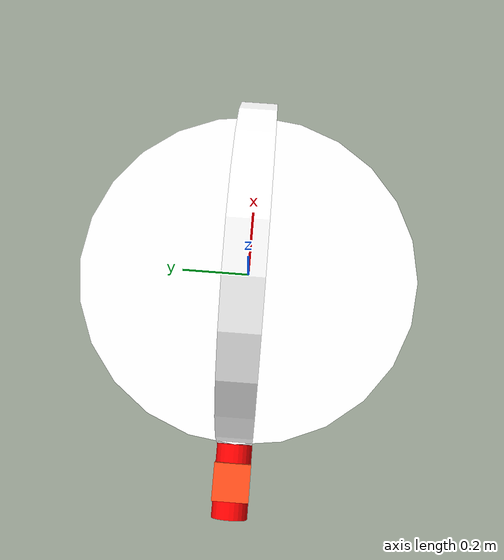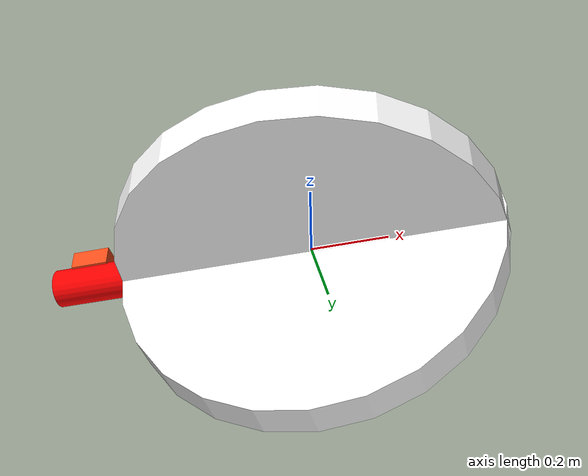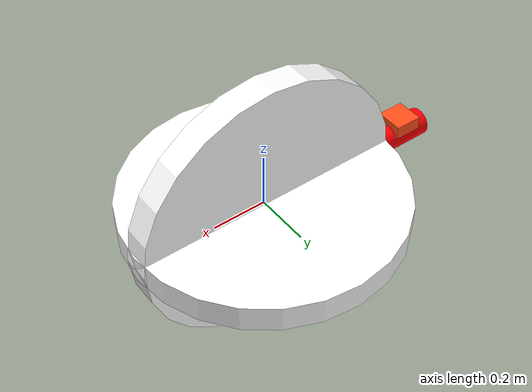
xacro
<?xml version='1.0'?>

<robot name="archerfish" xmlns:xacro="http://www.ros.org/wiki/xacro">

  <xacro:include filename="inertial_macros.xacro"/>
  <xacro:include filename="archerfish_robot.gazebo.xacro"/>

    <material name="white">
        <color rgba="1 1 1 1" />
    </material>

    <material name="orange">
        <color rgba="1 0.3 0.1 1"/>
    </material>

    <material name="blue">
        <color rgba="0.2 0.2 1 1"/>
    </material>

    <material name="black">
        <color rgba="0 0 0 1"/>
    </material>

    <material name="red">
        <color rgba="1 0 0 1"/>
    </material>

    <link name="base_footprint"/>

    <joint name="base_joint" type="fixed">
        <parent link="base_footprint"/>
        <child link="base_link"/>
        <origin xyz="0 0 0.001"/>
    </joint>

    <link name="base_link">
        <visual>
          <origin xyz="0 0 0.001"/>
          <geometry>
              <cylinder length="0.1" radius="0.5"/>
          </geometry>
          <material name="white"/>
        </visual>
        <collision>
          <origin xyz="0 0 0.001"/>
          <geometry>
              <cylinder length="0.1" radius="0.5"/>
          </geometry>
        </collision>
        <xacro:inertial_cylinder mass="10" length="0.1" radius="0.5">
            <origin xyz="0 0 0.001" rpy="0 0 0"/>
        </xacro:inertial_cylinder>
    </link>

    <gazebo reference="base_link">
        <material>Gazebo/Black</material>
    </gazebo>

    <joint name="revolutejoint" type="continuous">
        <parent link="base_link"/>
        <child link="main_body"/>
        <origin xyz="0 0 0.001" rpy="-${pi/2} 0 0" />
        <axis xyz="0 1 0"/>
    </joint>

    <link name="main_body">
        <visual>
          <origin xyz="0 0 0.001"/>
          <geometry>
              <cylinder length="0.1" radius="0.5"/>
          </geometry>
          <material name="white"/>
        </visual>
        <xacro:inertial_cylinder mass="10" length="0.1" radius="0.5">
            <origin xyz="0 0 0.001" rpy="-${pi/2} 0 0"/>
        </xacro:inertial_cylinder>
    </link>

    <gazebo reference="main_body">
        <material>Gazebo/White</material>
    </gazebo>

    <joint name="aimjoint" type="continuous">
        <parent link="main_body"/>
        <child link="barrel"/>
        <origin xyz="0 0 0" rpy="0 -${pi/2} 0" />
        <axis xyz="1 0 0"/>
    </joint>

    <link name="barrel">
        <visual>
          <origin xyz="0 0 0.6"/>
          <geometry>
              <cylinder length="0.2" radius="0.05"/>
          </geometry>
          <material name="red"/>
        </visual>
        <xacro:inertial_cylinder mass="10" length="0.2" radius="0.05">
            <origin xyz="0 0 0.6" rpy="-${pi/2} -${pi/2} 0"/>
        </xacro:inertial_cylinder>
    </link>

    <gazebo reference="barrel">
        <material>Gazebo/Red</material>
    </gazebo>

    <joint name="camera_joint" type="fixed">
        <parent link="barrel"/>
        <child link="camera_link"/>
        <origin xyz="0 -0.05 0.6" rpy="0 -${pi/2} ${pi/2}"/>
    </joint>

    <link name="camera_link">
        <visual>
          <origin xyz="0 0 0"/>
          <geometry>
              <box size="0.1 0.1 0.05"/>
          </geometry>
          <material name="orange"/>
        </visual>
        <xacro:inertial_box mass="15" x="0.1" y="0.1" z="0.05">
            <origin xyz="0 0 0" rpy="0 0 0"/>
        </xacro:inertial_box>
    </link>

    <gazebo reference="camera_link">
        <material>Gazebo/Orange</material>
    </gazebo>

  <joint name="imu_joint" type="fixed">
    <parent link="base_link"/>
    <child link="imu_link"/>
    <origin xyz="-0.032 0 0.068" rpy="0 0 0"/>
  </joint>

  <link name="imu_link"/>

  <transmission name="tran1">
    <type>transmission_interface/SimpleTransmission</type>
    <joint name="aimjoint">
      <hardwareInterface>hardware_interface/EffortJointInterface</hardwareInterface>
    </joint>
    <actuator name="motor1">
      <hardwareInterface>hardware_interface/EffortJointInterface</hardwareInterface>
      <mechanicalReduction>1</mechanicalReduction>
    </actuator>
  </transmission>

  <transmission name="tran2">
    <type>transmission_interface/SimpleTransmission</type>
    <joint name="revolutejoint">
      <hardwareInterface>hardware_interface/EffortJointInterface</hardwareInterface>
    </joint>
    <actuator name="motor2">
      <hardwareInterface>hardware_interface/EffortJointInterface</hardwareInterface>
      <mechanicalReduction>1</mechanicalReduction>
    </actuator>
  </transmission>

</robot>

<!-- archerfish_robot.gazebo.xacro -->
<robot name="archerfish_robot_sim" xmlns:xacro="http://ros.org/wiki/xacro">
  <xacro:arg name="imu_visual"   default="false"/>

  <gazebo>
    <plugin name="imu_plugin" filename="libgazebo_ros_imu.so">
      <alwaysOn>true</alwaysOn>
      <bodyName>imu_link</bodyName>
      <frameName>imu_link</frameName>
      <topicName>imu</topicName>
      <serviceName>imu_service</serviceName>
      <gaussianNoise>0.0</gaussianNoise>
      <updateRate>0</updateRate>
      <imu>
        <noise>
          <type>gaussian</type>
          <rate>
            <mean>0.0</mean>
            <stddev>2e-4</stddev>
            <bias_mean>0.0000075</bias_mean>
            <bias_stddev>0.0000008</bias_stddev>
          </rate>
          <accel>
            <mean>0.0</mean>
            <stddev>1.7e-2</stddev>
            <bias_mean>0.1</bias_mean>
            <bias_stddev>0.001</bias_stddev>
          </accel>
        </noise>
      </imu>
    </plugin>
  </gazebo>

   <gazebo>
  <plugin name="gazebo_ros_control" filename="libgazebo_ros_control.so">
    <robotNamespace>/arobot</robotNamespace>
    <robotSimType>gazebo_ros_control/DefaultRobotHWSim</robotSimType>
  </plugin>
</gazebo>

    <joint name="camera_optical_joint" type="fixed">
        <origin xyz="0 0 0" rpy="-${pi/2} 0 -${pi/2}" />
        <parent link="camera_link" />
        <child link="camera_link_optical" />
    </joint>

    <link name="camera_link_optical"></link>

        <gazebo reference="camera_link">
        <sensor type="depth" name="my_camera">
            <updateRate>20.0</updateRate>
            <visualize>true</visualize>
            <camera name="cam">
                <horizontal_fov>1.3962634</horizontal_fov>
                <image>
                    <width>64</width>
                    <height>48</height>
                    <format>R8G8B8</format>
                </image>
                <clip>
                    <near>0.02</near>
                    <far>100</far>
                </clip>
                <noise>
                    <type>gaussian</type>
                    <mean>0.0</mean>
                    <stddev>0.007</stddev>
                </noise>
            </camera>
            <plugin name="camera_plugin" filename="libgazebo_ros_openni_kinect.so">
          	<baseline>0.2</baseline>
          	<alwaysOn>true</alwaysOn>
          	<updateRate>0.0</updateRate>
          	<cameraName>/my_camera</cameraName>
          	<imageTopicName>/my_camera/color/image_raw</imageTopicName>
          	<cameraInfoTopicName>/my_camera/color/camera_info</cameraInfoTopicName>
          	<depthImageTopicName>/my_camera/depth/image_raw</depthImageTopicName>
          	<depthImageCameraInfoTopicName>/my_camera/depth/camera_info</depthImageCameraInfoTopicName>
          	<pointCloudTopicName>/my_camera/depth/points</pointCloudTopicName>
          	<frameName>camera_link_optical</frameName>
          	<pointCloudCutoff>0.5</pointCloudCutoff>
          	<pointCloudCutoffMax>3.0</pointCloudCutoffMax>
          	<distortionK1>0</distortionK1>
          	<distortionK2>0</distortionK2>
          	<distortionK3>0</distortionK3>
          	<distortionT1>0</distortionT1>
          	<distortionT2>0</distortionT2>
          	<CxPrime>0</CxPrime>
          	<Cx>0</Cx>
          	<Cy>0</Cy>
          	<focalLength>0</focalLength>
          	<hackBaseline>0</hackBaseline>
        	</plugin>
        </sensor>
    </gazebo>

</robot>
